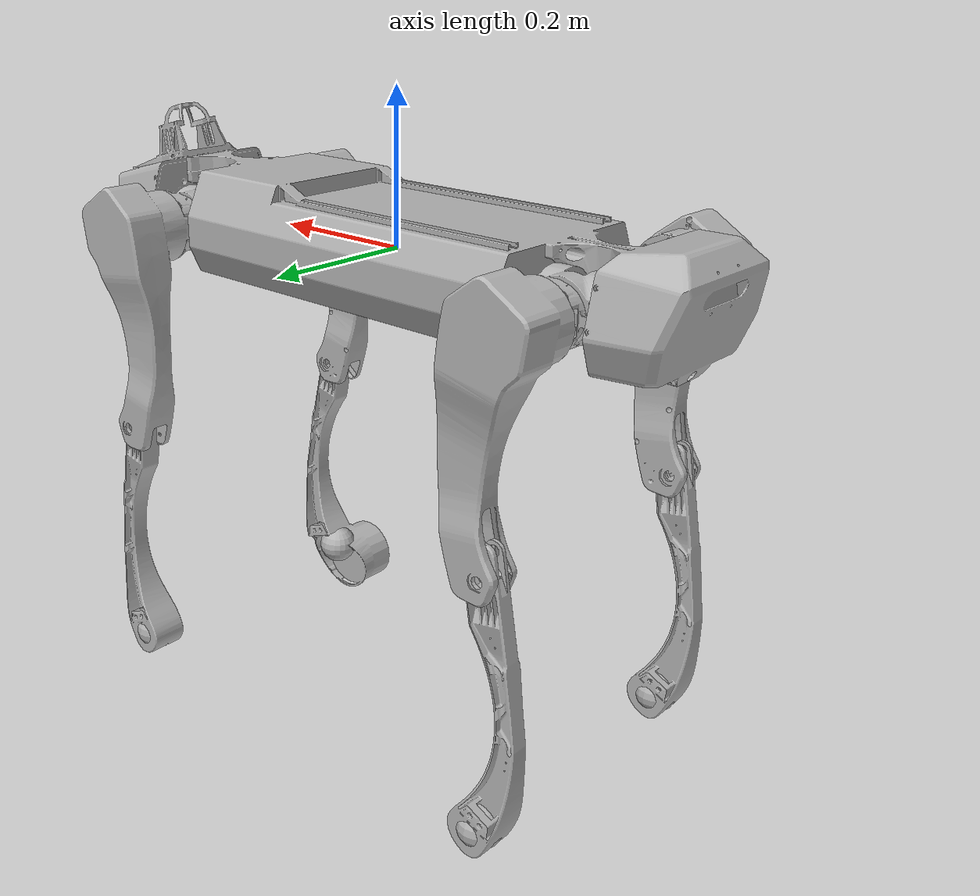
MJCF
<mujoco model="ly-mid-p-0916">
  <compiler angle="radian" meshdir="meshes/"/>

  <asset>
    <mesh name="base_link" content_type="model/stl" file="base_link.STL"/>
    <mesh name="LF_ABAD_LINK" content_type="model/stl" file="LF_ABAD_LINK.STL"/>
    <mesh name="LF_THIGH_LINK" content_type="model/stl" file="LF_THIGH_LINK.STL"/>
    <mesh name="LF_SHANK_LINK" content_type="model/stl" file="LF_SHANK_LINK.STL"/>
    <mesh name="RF_ABAD_LINK" content_type="model/stl" file="RF_ABAD_LINK.STL"/>
    <mesh name="RF_THIGH_LINK" content_type="model/stl" file="RF_THIGH_LINK.STL"/>
    <mesh name="RF_SHANK_LINK" content_type="model/stl" file="RF_SHANK_LINK.STL"/>
    <mesh name="LH_ABAD_LINK" content_type="model/stl" file="LH_ABAD_LINK.STL"/>
    <mesh name="LH_THIGH_LINK" content_type="model/stl" file="LH_THIGH_LINK.STL"/>
    <mesh name="LH_SHANK_LINK" content_type="model/stl" file="LH_SHANK_LINK.STL"/>
    <mesh name="RH_ABAD_LINK" content_type="model/stl" file="RH_ABAD_LINK.STL"/>
    <mesh name="RH_THIGH_LINK" content_type="model/stl" file="RH_THIGH_LINK.STL"/>
    <mesh name="RH_SHANK_LINK" content_type="model/stl" file="RH_SHANK_LINK.STL"/>
  </asset>

  <worldbody>
    <body name="trunk">
      <inertial pos="0.00771204 -2.38069e-06 0.00294618" quat="1.0017e-05 0.70184 1.85917e-05 0.712335" mass="21.555" diaginertia="0.962215 0.890231 0.122527"/>
      <joint name="floating_base_joint" type="free"/>
      <geom type="mesh" contype="0" conaffinity="0" group="1" density="0" rgba="0.69804 0.69804 0.69804 1" mesh="base_link"/>
      <geom type="mesh" conaffinity="0" rgba="0.69804 0.69804 0.69804 1" mesh="base_link"/>
      <geom size="0.0005 0.0005 0.0005" pos="0.0043 -0.02 0.0414" type="box" contype="0" conaffinity="0" group="1" density="0"/>
      <geom size="0.0005 0.0005 0.0005" pos="0.0043 -0.02 0.0414" type="box" conaffinity="0"/>
      <body name="LF_hip" pos="0.3154 0.05 0">
        <inertial pos="-1.3822e-06 0.012 -3.7851e-06" quat="-0.000589954 0.707109 -0.00052758 0.707104" mass="0.77865" diaginertia="0.0012113 0.000960299 0.00087971"/>
        <joint name="LF_HAA" pos="0 0 0" axis="1 0 0" range="-1.57 1.57" actuatorfrcrange="-40 40"/>
        <geom type="mesh" contype="0" conaffinity="0" group="1" density="0" rgba="0.69804 0.69804 0.69804 1" mesh="LF_ABAD_LINK"/>
        <geom type="mesh" conaffinity="0" rgba="0.69804 0.69804 0.69804 1" mesh="LF_ABAD_LINK"/>
        <body name="LF_thigh" pos="0 0.1388 0">
          <inertial pos="-0.0041209 -0.035242 -0.029079" quat="0.875107 0.115199 -0.00183727 0.470015" mass="2.1067" diaginertia="0.0136971 0.0135383 0.00268848"/>
          <joint name="LF_HFE" pos="0 0 0" axis="0 1 0" range="-1.04 4.18" actuatorfrcrange="-40 40"/>
          <geom type="mesh" contype="0" conaffinity="0" group="1" density="0" rgba="0.69804 0.69804 0.69804 1" mesh="LF_THIGH_LINK"/>
          <geom type="mesh" conaffinity="0" rgba="0.69804 0.69804 0.69804 1" mesh="LF_THIGH_LINK"/>
          <body name="LF_calf" pos="0 0 -0.272">
            <inertial pos="0.00882936 8.50853e-05 -0.238589" quat="0.706552 0.0119597 0.0120257 0.707458" mass="0.36823" diaginertia="0.00544666 0.00535811 0.000288216"/>
            <joint name="LF_KNEE" pos="0 0 0" axis="0 1 0" range="-2.735 -0.74" actuatorfrcrange="-100 100"/>
            <geom type="mesh" contype="0" conaffinity="0" group="1" density="0" rgba="0.69804 0.69804 0.69804 1" mesh="LF_SHANK_LINK"/>
            <geom type="mesh" conaffinity="0" rgba="0.69804 0.69804 0.69804 1" mesh="LF_SHANK_LINK"/>
            <body name="LF_FOOT" pos="0 0 -0.33">
              <geom type="sphere" size="0.03" conaffinity="0" rgba="0.69804 0.69804 0.69804 1" friction="1.0 0.1 0.0"/>
            </body>
          </body>
        </body>
      </body>
      <body name="RF_hip" pos="0.3154 -0.05 0">
        <inertial pos="-2.0194e-06 -0.012 -3.7868e-06" quat="0.000596588 0.707104 0.000520862 0.707109" mass="0.77865" diaginertia="0.0012113 0.000960299 0.00087971"/>
        <joint name="RF_HAA" pos="0 0 0" axis="1 0 0" range="-1.57 1.57" actuatorfrcrange="-40 40"/>
        <geom type="mesh" contype="0" conaffinity="0" group="1" density="0" rgba="0.69804 0.69804 0.69804 1" mesh="RF_ABAD_LINK"/>
        <geom type="mesh" conaffinity="0" rgba="0.69804 0.69804 0.69804 1" mesh="RF_ABAD_LINK"/>
        <body name="RF_thigh" pos="0 -0.1388 0">
          <inertial pos="-0.0041208 0.03524 -0.029084" quat="0.47015 -0.00186297 0.115208 0.875033" mass="2.1068" diaginertia="0.0136982 0.0135393 0.00268875"/>
          <joint name="RF_HFE" pos="0 0 0" axis="0 1 0" range="-1.04 4.18" actuatorfrcrange="-40 40"/>
          <geom type="mesh" contype="0" conaffinity="0" group="1" density="0" rgba="0.69804 0.69804 0.69804 1" mesh="RF_THIGH_LINK"/>
          <geom type="mesh" conaffinity="0" rgba="0.69804 0.69804 0.69804 1" mesh="RF_THIGH_LINK"/>
          <body name="RF_calf" pos="0 0 -0.272">
            <inertial pos="0.00882936 8.50853e-05 -0.238589" quat="0.706552 0.0119597 0.0120257 0.707458" mass="0.36823" diaginertia="0.00544666 0.00535811 0.000288216"/>
            <joint name="RF_KNEE" pos="0 0 0" axis="0 1 0" range="-2.735 -0.74" actuatorfrcrange="-100 100"/>
            <geom type="mesh" contype="0" conaffinity="0" group="1" density="0" rgba="0.69804 0.69804 0.69804 1" mesh="RF_SHANK_LINK"/>
            <geom type="mesh" conaffinity="0" rgba="0.69804 0.69804 0.69804 1" mesh="RF_SHANK_LINK"/>
            <body name="RF_FOOT" pos="0 0 -0.33">
              <geom type="sphere" size="0.03" conaffinity="0" rgba="0.69804 0.69804 0.69804 1" friction="1.0 0.1 0.0"/>
            </body>
          </body>
        </body>
      </body>
      <body name="LH_hip" pos="-0.3155 0.05 0">
        <inertial pos="-1.3685e-06 0.012 -3.7837e-06" quat="-0.000590737 0.707109 -0.000526854 0.707104" mass="0.77865" diaginertia="0.0012113 0.000960299 0.00087971"/>
        <joint name="LH_HAA" pos="0 0 0" axis="1 0 0" range="-1.57 1.57" actuatorfrcrange="-40 40"/>
        <geom type="mesh" contype="0" conaffinity="0" group="1" density="0" rgba="0.69804 0.69804 0.69804 1" mesh="LH_ABAD_LINK"/>
        <geom type="mesh" conaffinity="0" rgba="0.69804 0.69804 0.69804 1" mesh="LH_ABAD_LINK"/>
        <body name="LH_thigh" pos="0 0.1388 0">
          <inertial pos="0.0041208 -0.03524 -0.029084" quat="0.47015 0.00186297 -0.115208 0.875033" mass="2.1068" diaginertia="0.0136982 0.0135393 0.00268875"/>
          <joint name="LH_HFE" pos="0 0 0" axis="0 1 0" range="-4.18 1.04" actuatorfrcrange="-40 40"/>
          <geom type="mesh" contype="0" conaffinity="0" group="1" density="0" rgba="0.69804 0.69804 0.69804 1" mesh="LH_THIGH_LINK"/>
          <geom type="mesh" conaffinity="0" rgba="0.69804 0.69804 0.69804 1" mesh="LH_THIGH_LINK"/>
          <body name="LH_calf" pos="0 0 -0.272">
            <inertial pos="-0.00882936 -8.51053e-05 -0.238589" quat="0.706551 -0.0119597 -0.0120257 0.707459" mass="0.36823" diaginertia="0.00544666 0.00535811 0.000288216"/>
            <joint name="LH_KNEE" pos="0 0 0" axis="0 1 0" range="0.74 2.735" actuatorfrcrange="-100 100"/>
            <geom type="mesh" contype="0" conaffinity="0" group="1" density="0" rgba="0.69804 0.69804 0.69804 1" mesh="LH_SHANK_LINK"/>
            <geom type="mesh" conaffinity="0" rgba="0.69804 0.69804 0.69804 1" mesh="LH_SHANK_LINK"/>
            <body name="LH_FOOT" pos="0 0 -0.33">
              <geom type="sphere" size="0.03" conaffinity="0" rgba="0.69804 0.69804 0.69804 1" friction="1.0 0.1 0.0"/>
            </body>
          </body>
        </body>
      </body>
      <body name="RH_hip" pos="-0.3155 -0.05 0">
        <inertial pos="-2.033e-06 -0.012 -3.7853e-06" quat="0.000595864 0.707104 0.000521671 0.707109" mass="0.77865" diaginertia="0.0012113 0.000960299 0.00087971"/>
        <joint name="RH_HAA" pos="0 0 0" axis="1 0 0" range="-1.57 1.57" actuatorfrcrange="-40 40"/>
        <geom type="mesh" contype="0" conaffinity="0" group="1" density="0" rgba="0.69804 0.69804 0.69804 1" mesh="RH_ABAD_LINK"/>
        <geom type="mesh" conaffinity="0" rgba="0.69804 0.69804 0.69804 1" mesh="RH_ABAD_LINK"/>
        <body name="RH_thigh" pos="0 -0.1388 0">
          <inertial pos="0.0041208 0.035242 -0.029079" quat="0.875107 -0.115199 0.00183727 0.470015" mass="2.1067" diaginertia="0.0136971 0.0135383 0.00268848"/>
          <joint name="RH_HFE" pos="0 0 0" axis="0 1 0" range="-4.18 1.04" actuatorfrcrange="-40 40"/>
          <geom type="mesh" contype="0" conaffinity="0" group="1" density="0" rgba="0.69804 0.69804 0.69804 1" mesh="RH_THIGH_LINK"/>
          <geom type="mesh" conaffinity="0" rgba="0.69804 0.69804 0.69804 1" mesh="RH_THIGH_LINK"/>
          <body name="RH_calf" pos="0 0 -0.272">
            <inertial pos="-0.00882936 -8.51053e-05 -0.238589" quat="0.706551 -0.0119597 -0.0120257 0.707459" mass="0.36823" diaginertia="0.00544666 0.00535811 0.000288216"/>
            <joint name="RH_KNEE" pos="0 0 0" axis="0 1 0" range="0.74 2.735" actuatorfrcrange="-100 100"/>
            <geom type="mesh" contype="0" conaffinity="0" group="1" density="0" rgba="0.69804 0.69804 0.69804 1" mesh="RH_SHANK_LINK"/>
            <geom type="mesh" conaffinity="0" rgba="0.69804 0.69804 0.69804 1" mesh="RH_SHANK_LINK"/>
            <body name="RH_FOOT" pos="0 0 -0.33">
              <geom type="sphere" size="0.03" conaffinity="0" rgba="0.69804 0.69804 0.69804 1" friction="1.0 0.1 0.0"/>
            </body>
          </body>
        </body>
      </body>
    </body>
  </worldbody>

</mujoco>
